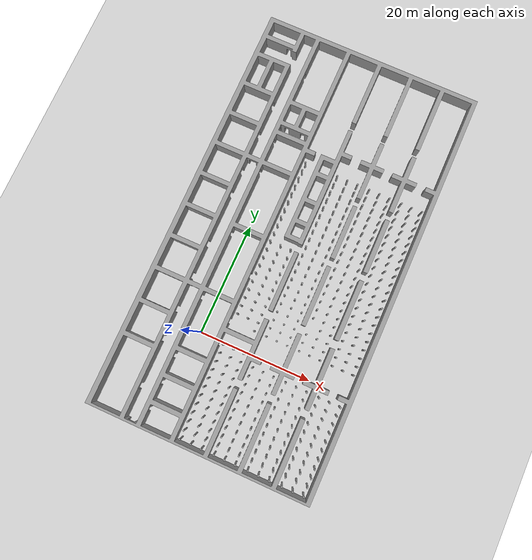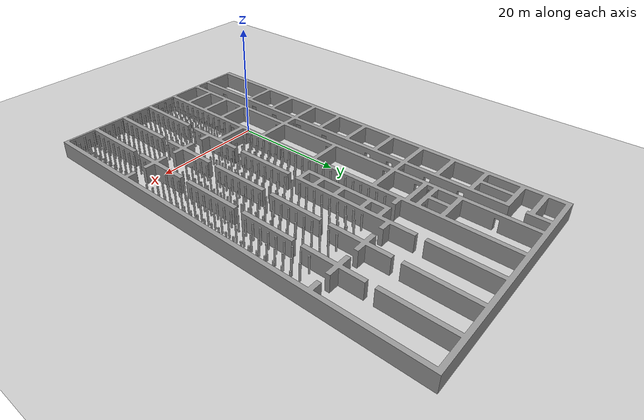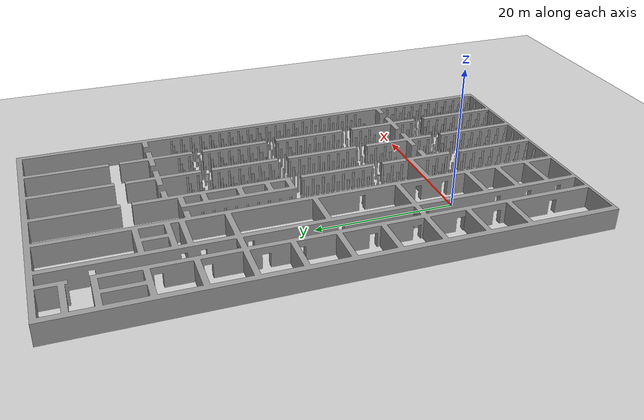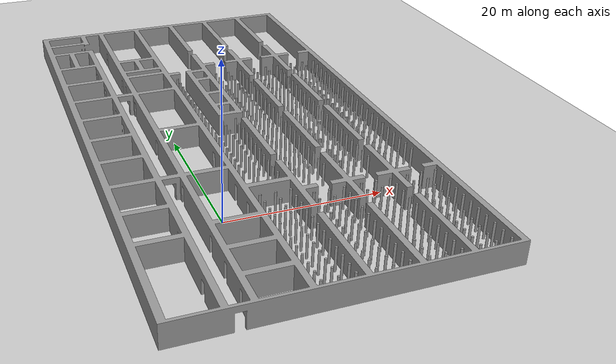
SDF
<?xml version="1.0" ?>
<sdf version="1.8">
  <world name="shelter_zero">
    <physics name="1ms" type="ignored">
      <max_step_size>0.001</max_step_size>
      <real_time_factor>1.0</real_time_factor>
    </physics>
    <plugin filename="gz-sim-physics-system" name="gz::sim::systems::Physics"></plugin>
    <plugin filename="gz-sim-user-commands-system" name="gz::sim::systems::UserCommands"></plugin>
    <plugin filename="gz-sim-scene-broadcaster-system" name="gz::sim::systems::SceneBroadcaster"></plugin>

    <light type="directional" name="sun">
      <cast_shadows>true</cast_shadows>
      <pose>0 0 10 0 0 0</pose>
      <diffuse>0.8 0.8 0.8 1</diffuse>
      <specular>0.2 0.2 0.2 1</specular>
      <direction>-0.5 0.1 -0.9</direction>
    </light>

    <model name="ground_plane">
      <static>true</static>
      <pose>7.8 19.4 0 0 0 0</pose>
      <link name="link">
        <collision name="collision">
          <geometry><plane><normal>0 0 1</normal><size>40 75</size></plane></geometry>
        </collision>
        <visual name="visual">
          <geometry><plane><normal>0 0 1</normal><size>40 74.4</size></plane></geometry>
          <material><ambient>0.8 0.8 0.8 1</ambient><diffuse>0.8 0.8 0.8 1</diffuse></material>
        </visual>
      </link>
    </model>

    <model name="shelter_environment">
      <static>true</static>
      <pose>0 0 -0.5 0 0 0</pose>
      <link name="environment_link">

         <collision name="zs_main_walls_collision">
          <geometry><mesh><uri>file:///home/oleksandr/ros2_ws/src/fcm_project/fcm_digital_twin/worlds/Gazebo_Meshes/zs_main_walls.stl</uri></mesh></geometry>
          <surface>
            <friction>
              <ode>
                <mu>1</mu>
                <mu2>1</mu2>
              </ode>
            </friction>
          </surface>
        </collision>
        <visual name="zs_main_walls_visual">
          <geometry><mesh><uri>file:///home/oleksandr/ros2_ws/src/fcm_project/fcm_digital_twin/worlds/Gazebo_Meshes/zs_main_walls.stl</uri></mesh></geometry>
          <material><ambient>0.6 0.6 0.6 1</ambient><diffuse>0.6 0.6 0.6 1</diffuse></material>
        </visual>

        <collision name="zs_pip_forset_collision">
          <geometry><mesh><uri>file:///home/oleksandr/ros2_ws/src/fcm_project/fcm_digital_twin/worlds/Gazebo_Meshes/zs_pip_forset.stl</uri></mesh></geometry>
          <surface>
            <friction>
              <ode>
                <mu>1</mu>
                <mu2>1</mu2>
              </ode>
            </friction>
          </surface>
        </collision>
        <visual name="zs_pip_forset_visual">
          <geometry><mesh><uri>file:///home/oleksandr/ros2_ws/src/fcm_project/fcm_digital_twin/worlds/Gazebo_Meshes/zs_pip_forset.stl</uri></mesh></geometry>
          <material><ambient>0.6 0.6 0.6 1</ambient><diffuse>0.6 0.6 0.6 1</diffuse></material>
        </visual>
      </link>
    </model>
  </world>
</sdf>
